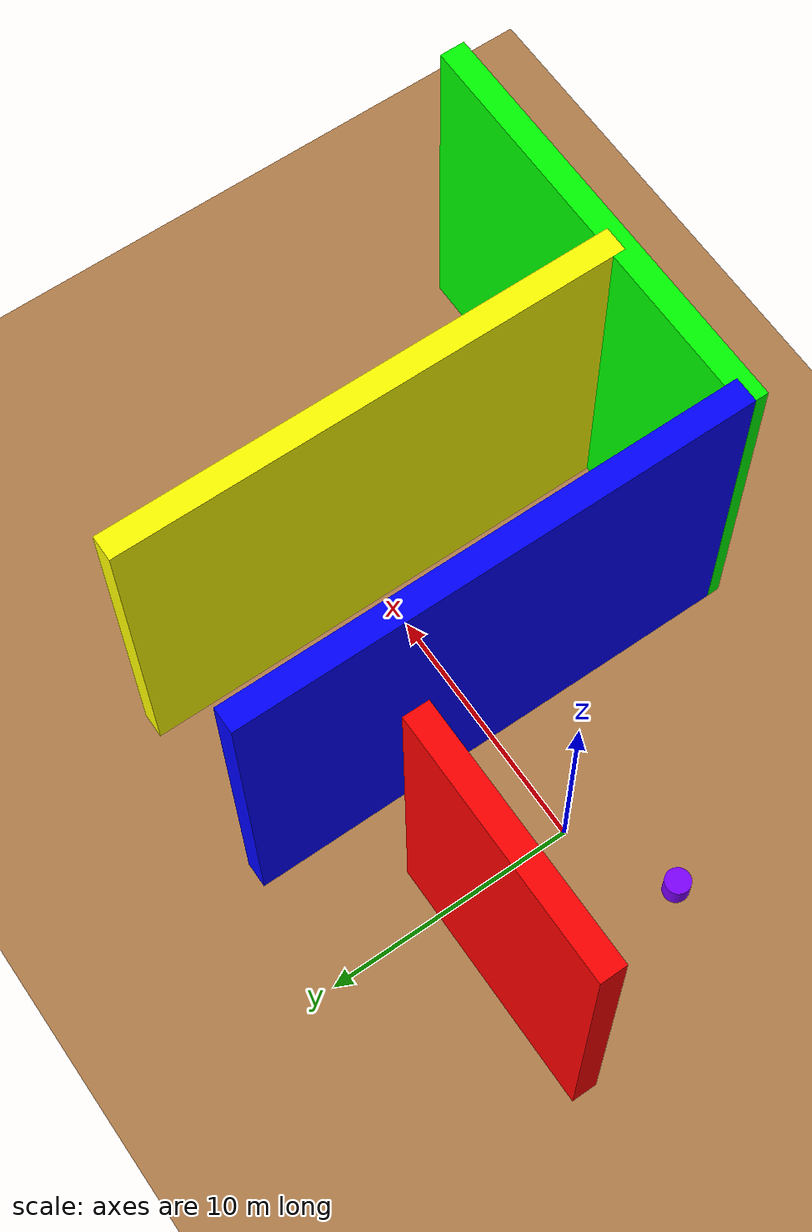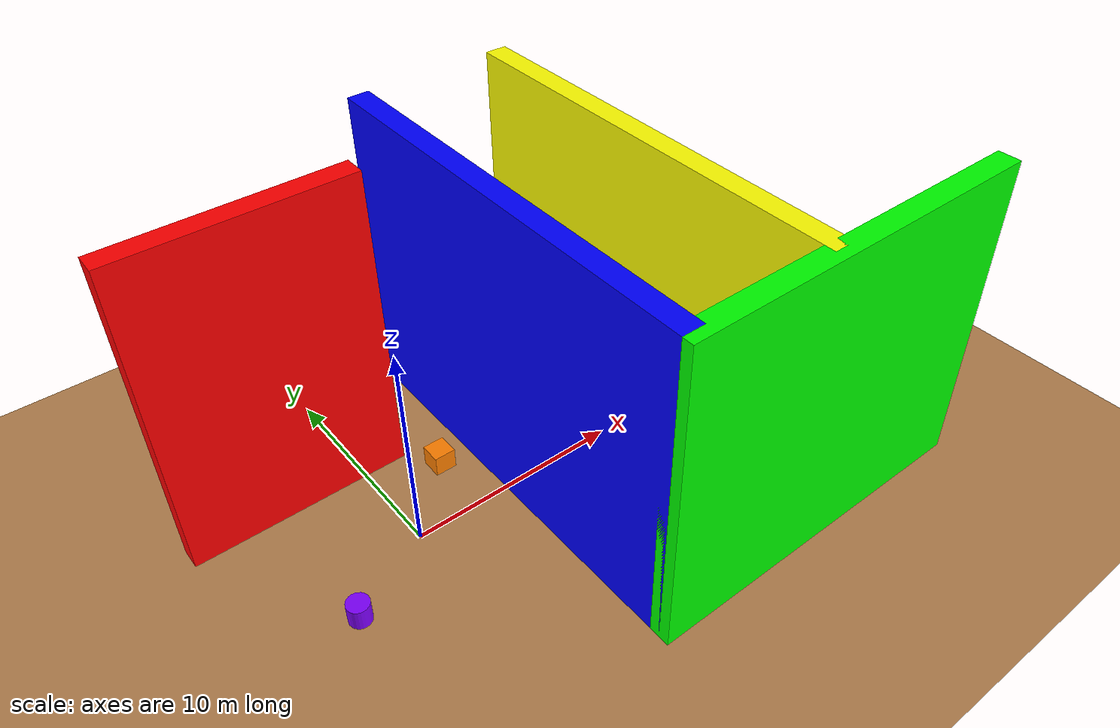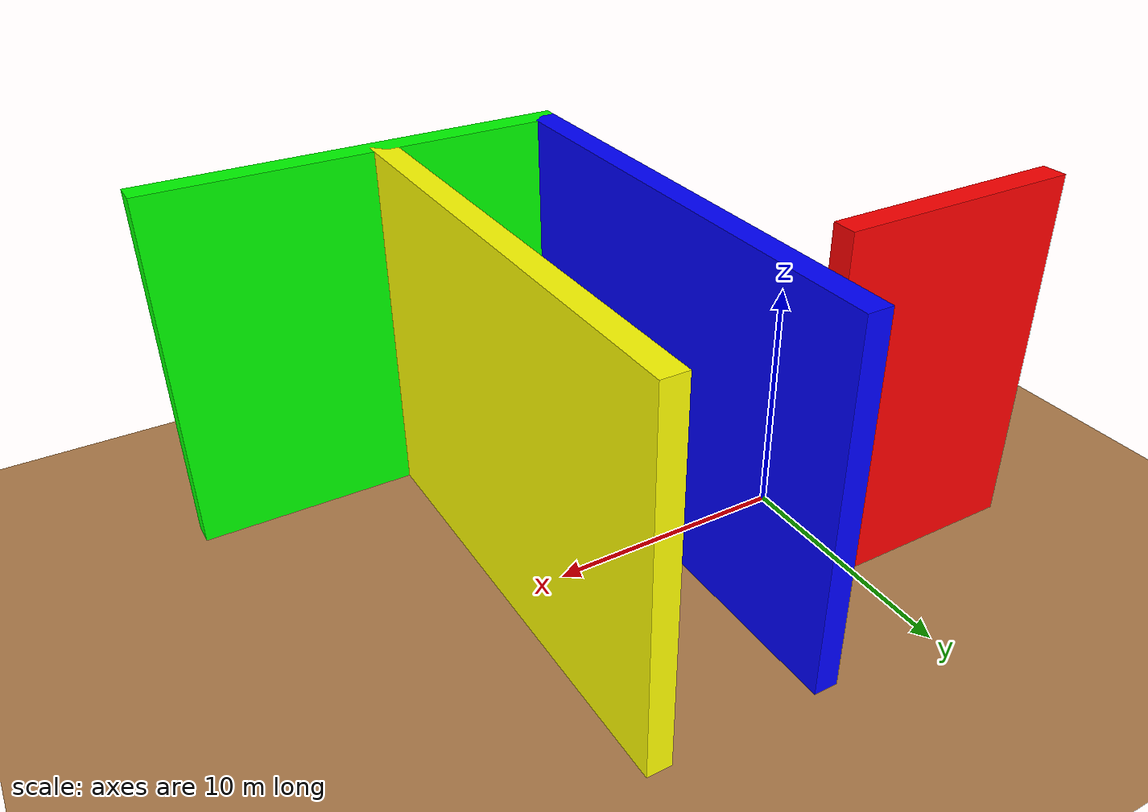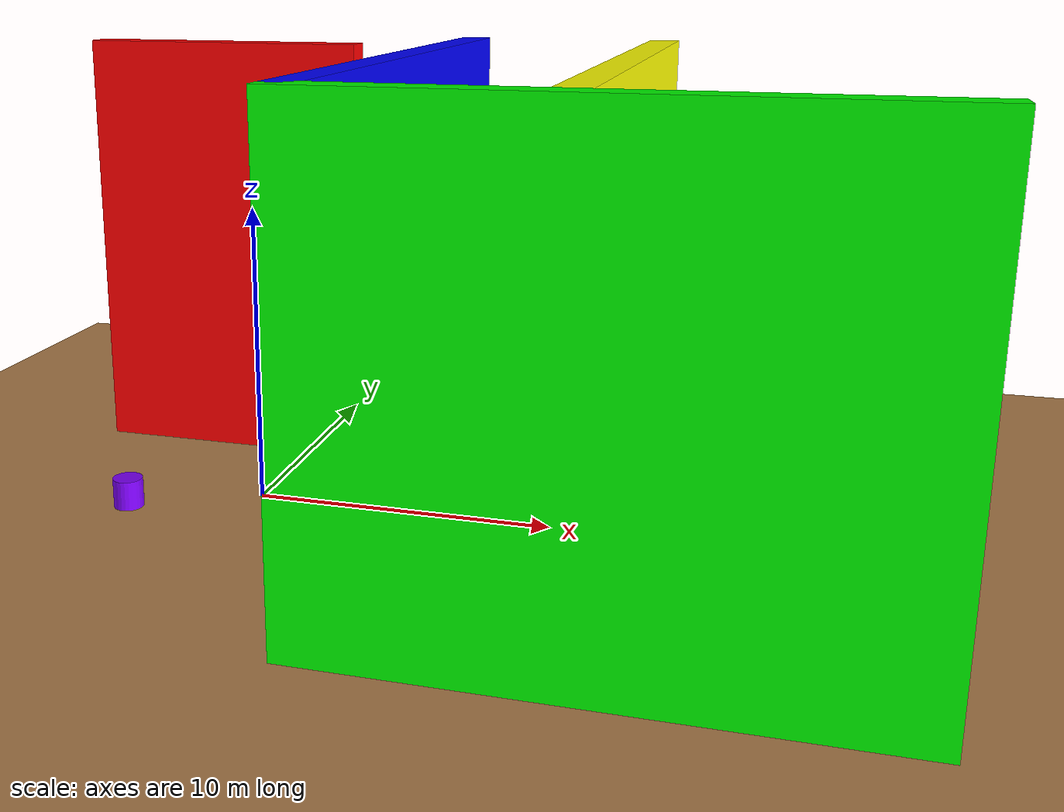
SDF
<?xml version="1.0" encoding="UTF-8"?>
<sdf version="1.9">
  <world name="default">

    <!-- Physics -->
    <physics type="ode">
      <max_step_size>0.004</max_step_size>
      <real_time_factor>1.0</real_time_factor>
      <real_time_update_rate>250</real_time_update_rate>
    </physics>
    <gravity>0 0 -9.8</gravity>
    <magnetic_field>6e-06 2.3e-05 -4.2e-05</magnetic_field>
    <atmosphere type="adiabatic"/>

    <!-- Scene setup -->
    <scene>
      <grid>false</grid>
      <ambient>0.4 0.4 0.4 1</ambient>
      <background>0.7 0.7 0.7 1</background>
      <shadows>true</shadows>
    </scene>

    <!-- Ground plane with texture -->
    <model name="ground_plane">
      <static>true</static>
      <link name="link">
        <collision name="collision">
          <geometry>
            <plane>
              <normal>0 0 1</normal>
              <size>100 100</size>
            </plane>
          </geometry>
        </collision>
        <visual name="visual">
          <geometry>
            <plane>
              <normal>0 0 1</normal>
              <size>100 100</size>
            </plane>
          </geometry>
          <material>
            <script>
              <uri>file://media/materials/scripts/gazebo.material</uri>
              <name>Gazebo/Wood</name>
            </script>
          </material>
        </visual>
      </link>
    </model>

    <!-- Sun light -->
    <light name="sun" type="directional">
      <pose>0 0 10 0 -0.5 0</pose>
      <cast_shadows>true</cast_shadows>
      <diffuse>1 1 1 1</diffuse>
      <specular>0.1 0.1 0.1 1</specular>
      <attenuation>
        <range>100</range>
        <linear>0.01</linear>
        <constant>0.9</constant>
        <quadratic>0.001</quadratic>
      </attenuation>
      <direction>-0.5 0.5 -1</direction>
    </light>

    <!-- Walls (different colors) -->
    <model name="wall1">
      <static>true</static>
      <pose>5 0 7.5 0 0 0</pose>
      <link name="link">
        <visual name="visual">
          <geometry><box><size>1 20 15</size></box></geometry>
          <material>
            <ambient>0 0 1 1</ambient>
            <diffuse>0 0 1 1</diffuse>
          </material>
        </visual>
        <collision name="collision">
          <geometry><box><size>1 20 15</size></box></geometry>
        </collision>
      </link>
    </model>

    <model name="wall2">
      <static>true</static>
      <pose>-3 5 7.5 0 0 0</pose>
      <link name="link">
        <visual name="visual">
          <geometry><box><size>10 1 15</size></box></geometry>
          <material>
            <ambient>1 0 0 1</ambient>
            <diffuse>1 0 0 1</diffuse>
          </material>
        </visual>
        <collision name="collision">
          <geometry><box><size>10 1 15</size></box></geometry>
        </collision>
      </link>
    </model>

    <model name="wall3">
      <static>true</static>
      <pose>13 -10 7.5 0 0 0</pose>
      <link name="link">
        <visual name="visual">
          <geometry><box><size>17 1 15</size></box></geometry>
          <material>
            <ambient>0 1 0 1</ambient>
            <diffuse>0 1 0 1</diffuse>
          </material>
        </visual>
        <collision name="collision">
          <geometry><box><size>17 1 15</size></box></geometry>
        </collision>
      </link>
    </model>

    <model name="wall4">
      <static>true</static>
      <pose>12 0 7.5 0 0 0</pose>
      <link name="link">
        <visual name="visual">
          <geometry><box><size>1 20 15</size></box></geometry>
          <material>
            <ambient>1 1 0 1</ambient>
            <diffuse>1 1 0 1</diffuse>
          </material>
        </visual>
        <collision name="collision">
          <geometry><box><size>1 20 15</size></box></geometry>
        </collision>
      </link>
    </model>

    <!-- Extra random boxes for features -->
    <model name="obstacle1">
      <static>true</static>
      <pose>3 3 0.5 0 0 0</pose>
      <link name="link">
        <visual name="visual">
          <geometry><box><size>1 1 1</size></box></geometry>
          <material><diffuse>1 0.5 0 1</diffuse></material>
        </visual>
      </link>
    </model>

    <model name="obstacle2">
      <static>true</static>
      <pose>-4 -2 0.5 0 0 0</pose>
      <link name="link">
        <visual name="visual">
          <geometry><cylinder><radius>0.5</radius><length>1</length></cylinder></geometry>
          <material><diffuse>0.5 0 1 1</diffuse></material>
        </visual>
      </link>
    </model>

    <spherical_coordinates>
        <surface_model>EARTH_WGS84</surface_model>
        <world_frame_orientation>ENU</world_frame_orientation>
        <latitude_deg>47.397971057728974</latitude_deg>
        <longitude_deg>8.546163739800146</longitude_deg>
        <elevation>0</elevation>
    </spherical_coordinates>
  </world>
</sdf>
